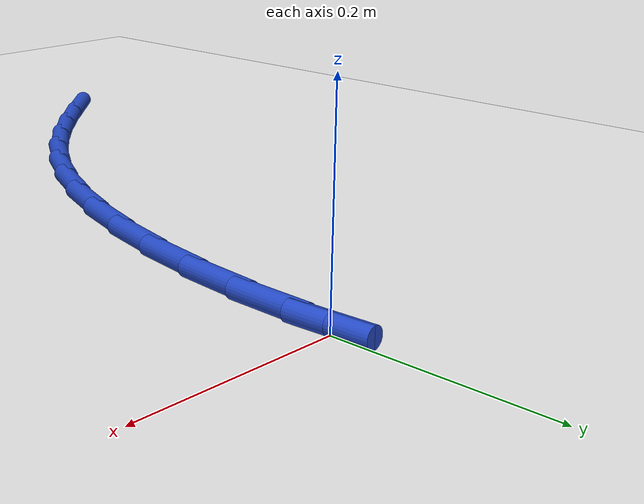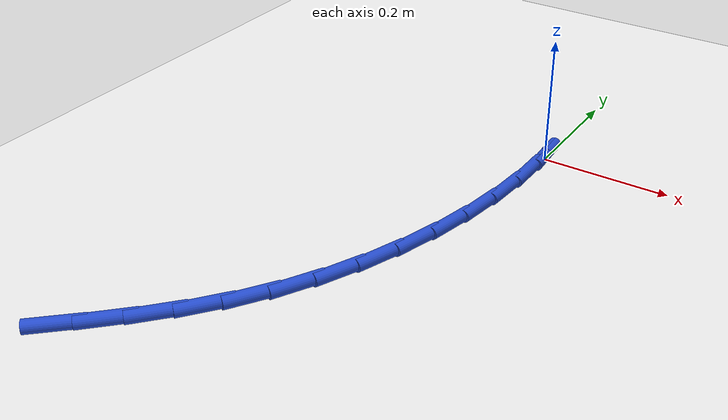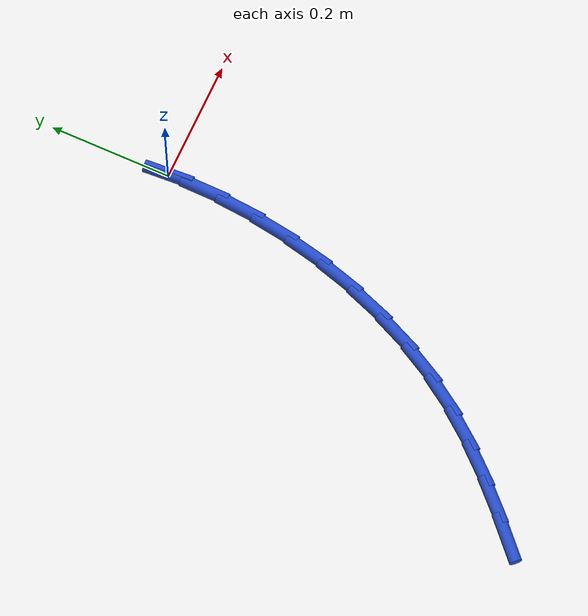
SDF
<sdf version="1.6">
 <world name="default">
  <model name="ground_plane">
   <static>1</static>
   <link name="link">
    <collision name="collision">
     <geometry><plane><normal>0 0 1</normal><size>100 100</size></plane></geometry>
     <surface><friction><ode><mu>100</mu><mu2>50</mu2></ode></friction></surface>
    </collision>
    <visual name="visual">
     <cast_shadows>0</cast_shadows>
     <geometry><plane><normal>0 0 1</normal><size>100 100</size></plane></geometry>
     <material>
      <script><uri>file://media/materials/scripts/gazebo.material</uri><name>Gazebo/WhiteGlow</name></script>
     </material>
    </visual>
   </link>
  </model>
  <model name="line">
   <link name="link_0">
    <pose>3.469446951953614e-17 0.0 0.01 0 1.57 -1.5122434113358116</pose>
    <collision name="collision">
     <geometry><cylinder><radius>0.01</radius><length>0.08</length></cylinder></geometry>
    </collision>
    <visual name="visual">
     <material>
      <script><name>Gazebo/Blue</name><uri>file://media/materials/scripts/gazebo.material</uri></script>
     </material>
     <geometry><cylinder><radius>0.01</radius><length>0.08</length></cylinder></geometry>
    </visual>
   </link>
   <link name="link_107">
    <pose>-0.3224716395143842 -0.7087366572126873 0.01 0 1.57 0.7437221629694829</pose>
    <collision name="collision">
     <geometry><cylinder><radius>0.01</radius><length>0.08</length></cylinder></geometry>
    </collision>
    <visual name="visual">
     <material>
      <script><name>Gazebo/Blue</name><uri>file://media/materials/scripts/gazebo.material</uri></script>
     </material>
     <geometry><cylinder><radius>0.01</radius><length>0.08</length></cylinder></geometry>
    </visual>
   </link>
   <link name="link_108">
    <pose>-0.27725575144951387 -0.6671408303408999 0.01 0 1.57 0.7805784120700016</pose>
    <collision name="collision">
     <geometry><cylinder><radius>0.01</radius><length>0.08</length></cylinder></geometry>
    </collision>
    <visual name="visual">
     <material>
      <script><name>Gazebo/Blue</name><uri>file://media/materials/scripts/gazebo.material</uri></script>
     </material>
     <geometry><cylinder><radius>0.01</radius><length>0.08</length></cylinder></geometry>
    </visual>
   </link>
   <link name="link_109">
    <pose>-0.23428974766407937 -0.6245870140136865 0.01 0 1.57 0.8333656251409128</pose>
    <collision name="collision">
     <geometry><cylinder><radius>0.01</radius><length>0.08</length></cylinder></geometry>
    </collision>
    <visual name="visual">
     <material>
      <script><name>Gazebo/Blue</name><uri>file://media/materials/scripts/gazebo.material</uri></script>
     </material>
     <geometry><cylinder><radius>0.01</radius><length>0.08</length></cylinder></geometry>
    </visual>
   </link>
   <link name="link_110">
    <pose>-0.19401733142614927 -0.5802531329933571 0.01 0 1.57 0.9014528933980485</pose>
    <collision name="collision">
     <geometry><cylinder><radius>0.01</radius><length>0.08</length></cylinder></geometry>
    </collision>
    <visual name="visual">
     <material>
      <script><name>Gazebo/Blue</name><uri>file://media/materials/scripts/gazebo.material</uri></script>
     </material>
     <geometry><cylinder><radius>0.01</radius><length>0.08</length></cylinder></geometry>
    </visual>
   </link>
   <link name="link_111">
    <pose>-0.1568822060037924 -0.5333171120422224 0.01 0 1.57 0.9829475000196232</pose>
    <collision name="collision">
     <geometry><cylinder><radius>0.01</radius><length>0.08</length></cylinder></geometry>
    </collision>
    <visual name="visual">
     <material>
      <script><name>Gazebo/Blue</name><uri>file://media/materials/scripts/gazebo.material</uri></script>
     </material>
     <geometry><cylinder><radius>0.01</radius><length>0.08</length></cylinder></geometry>
    </visual>
   </link>
   <link name="link_112">
    <pose>-0.12332577273430041 -0.4829656876185619 0.01 0 1.57 1.068564607395781</pose>
    <collision name="collision">
     <geometry><cylinder><radius>0.01</radius><length>0.08</length></cylinder></geometry>
    </collision>
    <visual name="visual">
     <material>
      <script><name>Gazebo/Blue</name><uri>file://media/materials/scripts/gazebo.material</uri></script>
     </material>
     <geometry><cylinder><radius>0.01</radius><length>0.08</length></cylinder></geometry>
    </visual>
   </link>
   <link name="link_113">
    <pose>-0.09364784456310968 -0.42892759069862274 0.01 0 1.57 1.1478784250515712</pose>
    <collision name="collision">
     <geometry><cylinder><radius>0.01</radius><length>0.08</length></cylinder></geometry>
    </collision>
    <visual name="visual">
     <material>
      <script><name>Gazebo/Blue</name><uri>file://media/materials/scripts/gazebo.material</uri></script>
     </material>
     <geometry><cylinder><radius>0.01</radius><length>0.08</length></cylinder></geometry>
    </visual>
   </link>
   <link name="link_114">
    <pose>-0.06792675207956615 -0.37177937757294655 0.01 0 1.57 1.2215867278592676</pose>
    <collision name="collision">
     <geometry><cylinder><radius>0.01</radius><length>0.08</length></cylinder></geometry>
    </collision>
    <visual name="visual">
     <material>
      <script><name>Gazebo/Blue</name><uri>file://media/materials/scripts/gazebo.material</uri></script>
     </material>
     <geometry><cylinder><radius>0.01</radius><length>0.08</length></cylinder></geometry>
    </visual>
   </link>
   <link name="link_115">
    <pose>-0.046221535522617915 -0.3121714471969183 0.01 0 1.57 1.2912549905136472</pose>
    <collision name="collision">
     <geometry><cylinder><radius>0.01</radius><length>0.08</length></cylinder></geometry>
    </collision>
    <visual name="visual">
     <material>
      <script><name>Gazebo/Blue</name><uri>file://media/materials/scripts/gazebo.material</uri></script>
     </material>
     <geometry><cylinder><radius>0.01</radius><length>0.08</length></cylinder></geometry>
    </visual>
   </link>
   <link name="link_116">
    <pose>-0.028591235131213786 -0.250754198525925 0.01 0 1.57 1.3583715835066563</pose>
    <collision name="collision">
     <geometry><cylinder><radius>0.01</radius><length>0.08</length></cylinder></geometry>
    </collision>
    <visual name="visual">
     <material>
      <script><name>Gazebo/Blue</name><uri>file://media/materials/scripts/gazebo.material</uri></script>
     </material>
     <geometry><cylinder><radius>0.01</radius><length>0.08</length></cylinder></geometry>
    </visual>
   </link>
   <link name="link_117">
    <pose>-0.015094891144301664 -0.18817803051535115 0.01 0 1.57 1.4243777675308884</pose>
    <collision name="collision">
     <geometry><cylinder><radius>0.01</radius><length>0.08</length></cylinder></geometry>
    </collision>
    <visual name="visual">
     <material>
      <script><name>Gazebo/Blue</name><uri>file://media/materials/scripts/gazebo.material</uri></script>
     </material>
     <geometry><cylinder><radius>0.01</radius><length>0.08</length></cylinder></geometry>
    </visual>
   </link>
   <link name="link_118">
    <pose>-0.005791543800829812 -0.1250933421205822 0.01 0 1.57 1.4907155684136328</pose>
    <collision name="collision">
     <geometry><cylinder><radius>0.01</radius><length>0.08</length></cylinder></geometry>
    </collision>
    <visual name="visual">
     <material>
      <script><name>Gazebo/Blue</name><uri>file://media/materials/scripts/gazebo.material</uri></script>
     </material>
     <geometry><cylinder><radius>0.01</radius><length>0.08</length></cylinder></geometry>
    </visual>
   </link>
   <link name="link_119">
    <pose>-0.00074023333974646 -0.062150532297002806 0.01 0 1.57 1.5588865600849593</pose>
    <collision name="collision">
     <geometry><cylinder><radius>0.01</radius><length>0.08</length></cylinder></geometry>
    </collision>
    <visual name="visual">
     <material>
      <script><name>Gazebo/Blue</name><uri>file://media/materials/scripts/gazebo.material</uri></script>
     </material>
     <geometry><cylinder><radius>0.01</radius><length>0.08</length></cylinder></geometry>
    </visual>
   </link>
   <link name="link_120">
    <pose>2.7755575615628914e-17 1.3877787807814457e-16 0.01 0 1.57 -1.5110747731366387</pose>
    <collision name="collision">
     <geometry><cylinder><radius>0.01</radius><length>0.08</length></cylinder></geometry>
    </collision>
    <visual name="visual">
     <material>
      <script><name>Gazebo/Blue</name><uri>file://media/materials/scripts/gazebo.material</uri></script>
     </material>
     <geometry><cylinder><radius>0.01</radius><length>0.08</length></cylinder></geometry>
    </visual>
   </link>
  </model>
 </world>
</sdf>
